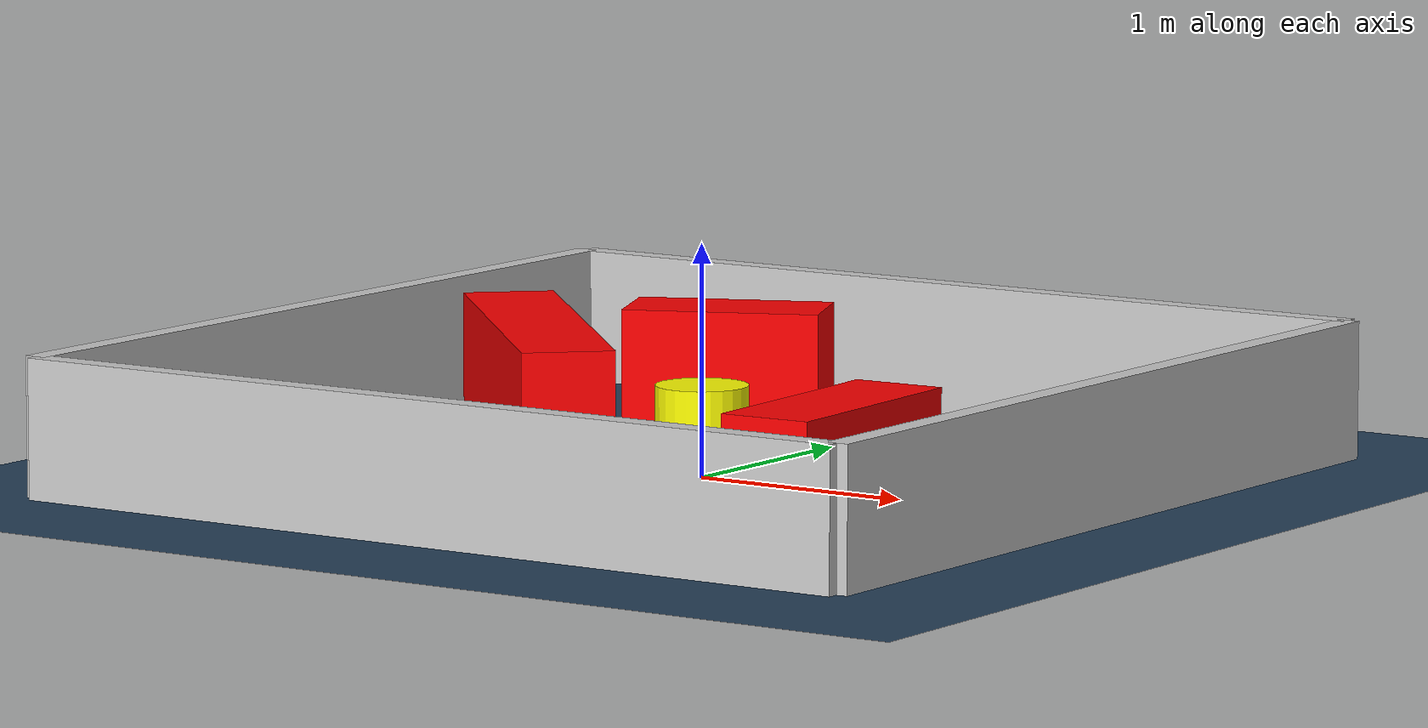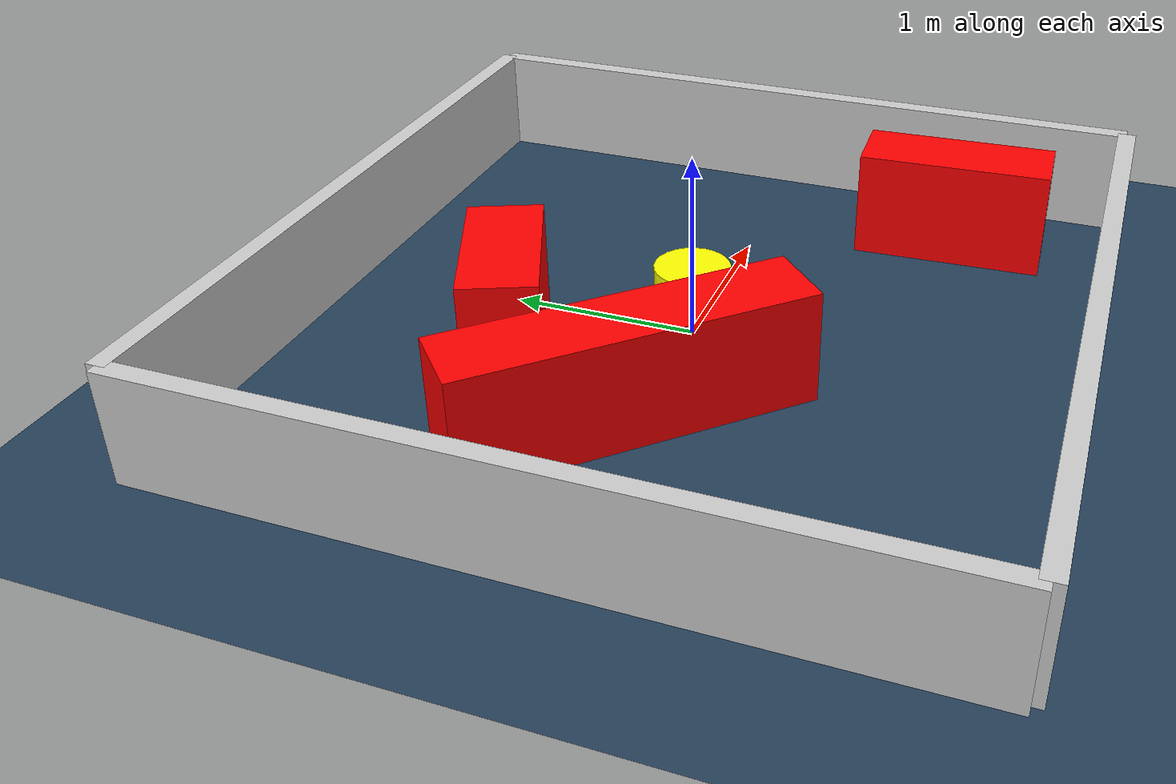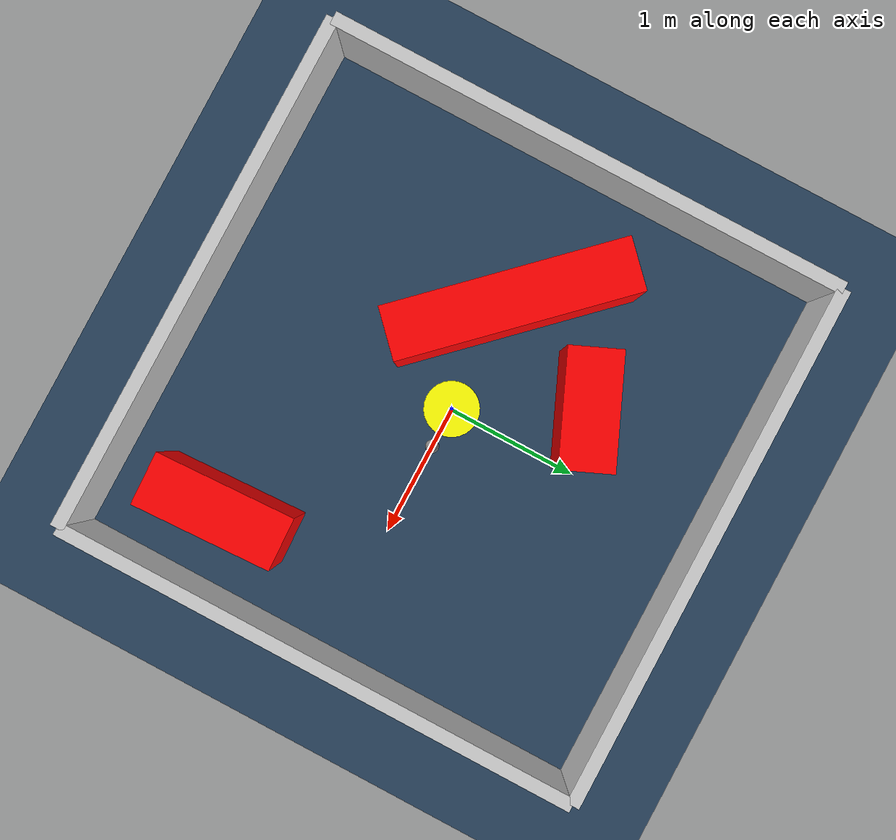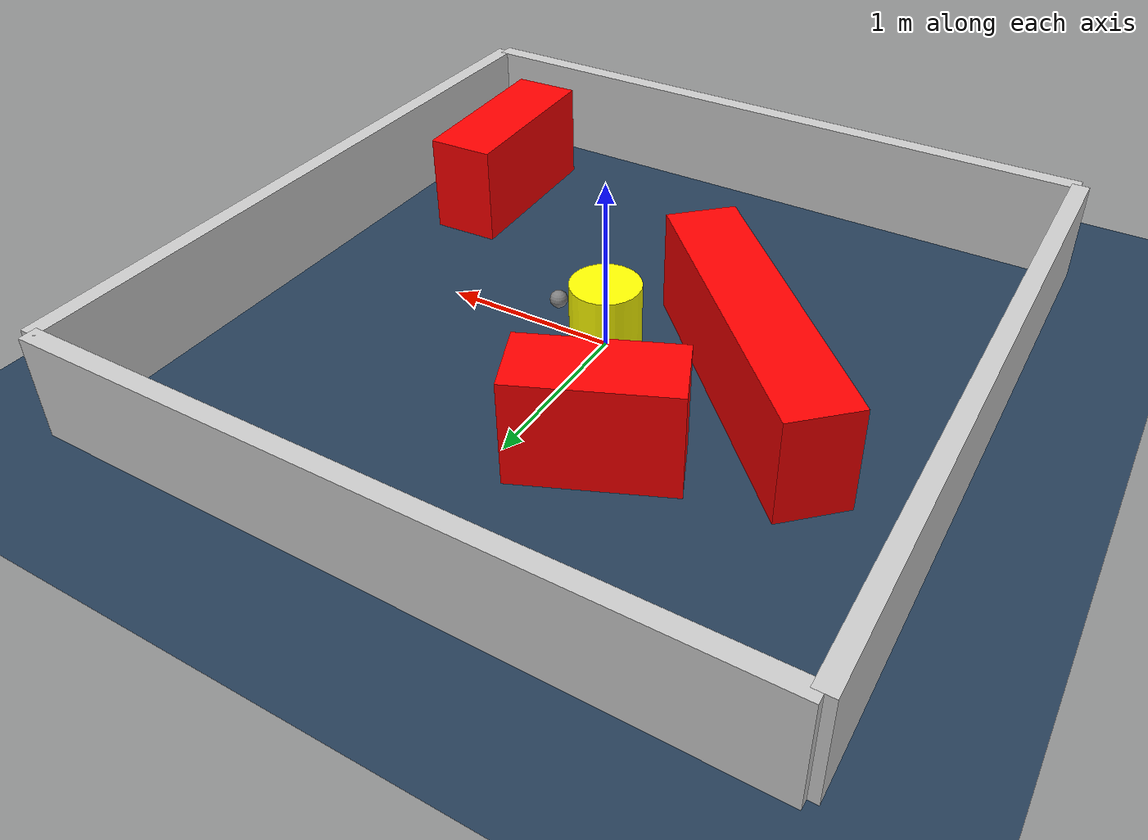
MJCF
<?xml version="1.0" ?>
<mujoco model="generated_environment">
  <option timestep="0.01" integrator="RK4" cone="elliptic"/>
  <default>
    <geom density="1"/>
  </default>
  <asset>
    <texture builtin="gradient" height="3072" rgb1="0.3 0.5 0.7" rgb2="0 0 0" type="skybox" width="512"/>
    <texture builtin="checker" height="300" mark="edge" markrgb="0.8 0.8 0.8" name="groundplane" rgb1="0.2 0.3 0.4" rgb2="0.1 0.2 0.3" type="2d" width="300"/>
    <material name="groundplane" reflectance="0.2" texrepeat="5 5" texture="groundplane" texuniform="true"/>
    <material name="robot" rgba="0.0 1.0 0.0 1"/>
  </asset>
  <worldbody>
    <light dir="0 0 -1" directional="true" pos="0 0 1.5"/>
    <geom condim="4" friction="1.0 0.005 0.001" material="groundplane" name="floor" size="0 0 0.05" type="plane"/>
    <body name="walls">
      <geom name="wall_1" condim="4" pos="-2.0 0.0 0.3" rgba="0.800000011920929 0.800000011920929 0.800000011920929 1.0" size="0.05 2.0 0.3" type="box"/>
      <geom name="wall_2" condim="4" pos="2.0 0.0 0.3" rgba="0.800000011920929 0.800000011920929 0.800000011920929 1.0" size="0.05 2.0 0.3" type="box"/>
      <geom name="wall_3" condim="4" pos="0.0 -2.0 0.3" rgba="0.800000011920929 0.800000011920929 0.800000011920929 1.0" size="2.0 0.05 0.3" type="box"/>
      <geom name="wall_4" condim="4" pos="0.0 2.0 0.3" rgba="0.800000011920929 0.800000011920929 0.800000011920929 1.0" size="2.0 0.05 0.3" type="box"/>
    </body>
    <body name="robot">
      <joint name="joint_x" type="slide" pos="0 0 0" axis="1 0 0"/>
      <joint name="joint_y" type="slide" pos="0 0 0" axis="0 1 0"/>
      <geom name="robot" type="sphere" pos="0.3 0.0 0.2" size="0.05" mass="5." friction="1.0 0.005 0.0001" condim="4" rgba="0.5 0.5 0.5 1.0"/>
      <site name="sensor_ball"/>
    </body>
    <body name="obstacle_movable_1">
      <geom name="obstacle_movable_1" condim="4" pos="0.0 0.0 0.2" euler="0 0 0.0" friction="1.0 0.005 0.001" rgba="1.0 1.0 0.0 1.0" size="0.2 0.2 0.0" type="cylinder" mass="0.1"/>
      <joint type="free"/>
    </body>
    <body name="obstacle_2_static">
      <geom name="obstacle_2_static" condim="4" pos="1.3958920606687846 -1.1133070837049845 0.3" euler="0 0 272.3543373671941" friction="1.0 0.005 0.001" rgba="1 0 0 1" size="0.526447399206503 0.2 0.3" type="box"/>
    </body>
    <body name="obstacle_3_static">
      <geom name="obstacle_3_static" condim="4" pos="-0.8642912537238192 0.013796666886887854 0.3" euler="0 0 133.68790946129462" friction="1.0 0.005 0.001" rgba="1 0 0 1" size="0.9074174410626805 0.2 0.3" type="box"/>
    </body>
    <body name="obstacle_4_static">
      <geom name="obstacle_4_static" condim="4" pos="-0.4450653517488352 0.8527098698020883 0.3" euler="0 0 203.3851178123488" friction="1.0 0.005 0.001" rgba="1 0 0 1" size="0.43192035018840946 0.2 0.3" type="box"/>
    </body>
  </worldbody>
  <actuator>
    <motor name="actuator_x" joint="joint_x" gear="1" ctrlrange="-1 1"/>
    <motor name="actuator_y" joint="joint_y" gear="1" ctrlrange="-1 1"/>
  </actuator>
</mujoco>
